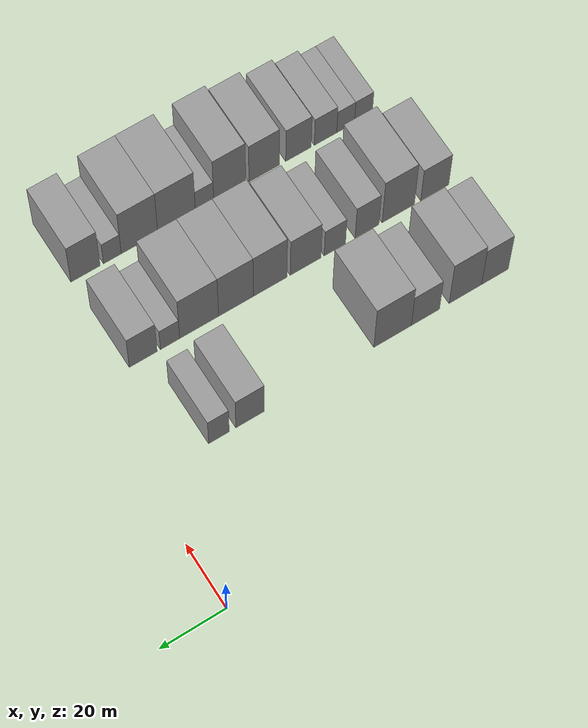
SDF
<sdf version="1.6">
 <world name="default">
  <model name="building_27">
   <static>1</static>
   <pose>50.0000 -107.6770 0 0.000000 0.000000 0.000000</pose>
   <link name="link">
    <pose>0 0 10.50 0 0 0</pose>
    <collision name="collision"><geometry><box><size>20.0000 8.5136 21.0000</size></box></geometry></collision>
    <visual name="visual">
     <cast_shadows>0</cast_shadows>
     <geometry><box><size>20.0000 8.5136 21.0000</size></box></geometry>
     <material>
      <script>
       <uri>model://grey_wall/materials/scripts</uri>
       <uri>model://grey_wall/materials/textures</uri>
       <name>vrc/grey_wall</name>
      </script>
     </material>
    </visual>
   </link>
  </model>
  <model name="building_28">
   <static>1</static>
   <pose>50.0000 -98.3052 0 0.000000 0.000000 0.000000</pose>
   <link name="link">
    <pose>0 0 12.00 0 0 0</pose>
    <collision name="collision"><geometry><box><size>20.0000 10.2300 24.0000</size></box></geometry></collision>
    <visual name="visual">
     <cast_shadows>0</cast_shadows>
     <geometry><box><size>20.0000 10.2300 24.0000</size></box></geometry>
     <material>
      <script>
       <uri>model://grey_wall/materials/scripts</uri>
       <uri>model://grey_wall/materials/textures</uri>
       <name>vrc/grey_wall</name>
      </script>
     </material>
    </visual>
   </link>
  </model>
  <model name="building_29">
   <static>1</static>
   <pose>50.0000 -85.7666 0 0.000000 0.000000 0.000000</pose>
   <link name="link">
    <pose>0 0 9.00 0 0 0</pose>
    <collision name="collision"><geometry><box><size>20.0000 8.8471 18.0000</size></box></geometry></collision>
    <visual name="visual">
     <cast_shadows>0</cast_shadows>
     <geometry><box><size>20.0000 8.8471 18.0000</size></box></geometry>
     <material>
      <script>
       <uri>model://grey_wall/materials/scripts</uri>
       <uri>model://grey_wall/materials/textures</uri>
       <name>vrc/grey_wall</name>
      </script>
     </material>
    </visual>
   </link>
  </model>
  <model name="building_30">
   <static>1</static>
   <pose>50.0000 -75.5026 0 0.000000 0.000000 0.000000</pose>
   <link name="link">
    <pose>0 0 12.00 0 0 0</pose>
    <collision name="collision"><geometry><box><size>20.0000 11.6808 24.0000</size></box></geometry></collision>
    <visual name="visual">
     <cast_shadows>0</cast_shadows>
     <geometry><box><size>20.0000 11.6808 24.0000</size></box></geometry>
     <material>
      <script>
       <uri>model://grey_wall/materials/scripts</uri>
       <uri>model://grey_wall/materials/textures</uri>
       <name>vrc/grey_wall</name>
      </script>
     </material>
    </visual>
   </link>
  </model>
  <model name="building_31">
   <static>1</static>
   <pose>50.0000 -31.6511 0 0.000000 0.000000 0.000000</pose>
   <link name="link">
    <pose>0 0 9.00 0 0 0</pose>
    <collision name="collision"><geometry><box><size>20.0000 8.6741 18.0000</size></box></geometry></collision>
    <visual name="visual">
     <cast_shadows>0</cast_shadows>
     <geometry><box><size>20.0000 8.6741 18.0000</size></box></geometry>
     <material>
      <script>
       <uri>model://grey_wall/materials/scripts</uri>
       <uri>model://grey_wall/materials/textures</uri>
       <name>vrc/grey_wall</name>
      </script>
     </material>
    </visual>
   </link>
  </model>
  <model name="building_32">
   <static>1</static>
   <pose>50.0000 -22.1892 0 0.000000 0.000000 0.000000</pose>
   <link name="link">
    <pose>0 0 7.50 0 0 0</pose>
    <collision name="collision"><geometry><box><size>20.0000 6.2497 15.0000</size></box></geometry></collision>
    <visual name="visual">
     <cast_shadows>0</cast_shadows>
     <geometry><box><size>20.0000 6.2497 15.0000</size></box></geometry>
     <material>
      <script>
       <uri>model://grey_wall/materials/scripts</uri>
       <uri>model://grey_wall/materials/textures</uri>
       <name>vrc/grey_wall</name>
      </script>
     </material>
    </visual>
   </link>
  </model>
  <model name="building_93">
   <static>1</static>
   <pose>79.0000 -107.7630 0 0.000000 0.000000 0.000000</pose>
   <link name="link">
    <pose>0 0 9.00 0 0 0</pose>
    <collision name="collision"><geometry><box><size>20.0000 8.9715 18.0000</size></box></geometry></collision>
    <visual name="visual">
     <cast_shadows>0</cast_shadows>
     <geometry><box><size>20.0000 8.9715 18.0000</size></box></geometry>
     <material>
      <script>
       <uri>model://grey_wall/materials/scripts</uri>
       <uri>model://grey_wall/materials/textures</uri>
       <name>vrc/grey_wall</name>
      </script>
     </material>
    </visual>
   </link>
  </model>
  <model name="building_94">
   <static>1</static>
   <pose>79.0000 -96.1327 0 0.000000 0.000000 0.000000</pose>
   <link name="link">
    <pose>0 0 12.00 0 0 0</pose>
    <collision name="collision"><geometry><box><size>20.0000 10.2889 24.0000</size></box></geometry></collision>
    <visual name="visual">
     <cast_shadows>0</cast_shadows>
     <geometry><box><size>20.0000 10.2889 24.0000</size></box></geometry>
     <material>
      <script>
       <uri>model://grey_wall/materials/scripts</uri>
       <uri>model://grey_wall/materials/textures</uri>
       <name>vrc/grey_wall</name>
      </script>
     </material>
    </visual>
   </link>
  </model>
  <model name="building_95">
   <static>1</static>
   <pose>79.0000 -86.2134 0 0.000000 0.000000 0.000000</pose>
   <link name="link">
    <pose>0 0 9.00 0 0 0</pose>
    <collision name="collision"><geometry><box><size>20.0000 7.5497 18.0000</size></box></geometry></collision>
    <visual name="visual">
     <cast_shadows>0</cast_shadows>
     <geometry><box><size>20.0000 7.5497 18.0000</size></box></geometry>
     <material>
      <script>
       <uri>model://grey_wall/materials/scripts</uri>
       <uri>model://grey_wall/materials/textures</uri>
       <name>vrc/grey_wall</name>
      </script>
     </material>
    </visual>
   </link>
  </model>
  <model name="building_96">
   <static>1</static>
   <pose>79.0000 -76.0758 0 0.000000 0.000000 0.000000</pose>
   <link name="link">
    <pose>0 0 7.50 0 0 0</pose>
    <collision name="collision"><geometry><box><size>20.0000 6.7255 15.0000</size></box></geometry></collision>
    <visual name="visual">
     <cast_shadows>0</cast_shadows>
     <geometry><box><size>20.0000 6.7255 15.0000</size></box></geometry>
     <material>
      <script>
       <uri>model://grey_wall/materials/scripts</uri>
       <uri>model://grey_wall/materials/textures</uri>
       <name>vrc/grey_wall</name>
      </script>
     </material>
    </visual>
   </link>
  </model>
  <model name="building_97">
   <static>1</static>
   <pose>79.0000 -66.9052 0 0.000000 0.000000 0.000000</pose>
   <link name="link">
    <pose>0 0 10.50 0 0 0</pose>
    <collision name="collision"><geometry><box><size>20.0000 9.6157 21.0000</size></box></geometry></collision>
    <visual name="visual">
     <cast_shadows>0</cast_shadows>
     <geometry><box><size>20.0000 9.6157 21.0000</size></box></geometry>
     <material>
      <script>
       <uri>model://grey_wall/materials/scripts</uri>
       <uri>model://grey_wall/materials/textures</uri>
       <name>vrc/grey_wall</name>
      </script>
     </material>
    </visual>
   </link>
  </model>
  <model name="building_98">
   <static>1</static>
   <pose>79.0000 -55.8953 0 0.000000 0.000000 0.000000</pose>
   <link name="link">
    <pose>0 0 12.00 0 0 0</pose>
    <collision name="collision"><geometry><box><size>20.0000 10.4041 24.0000</size></box></geometry></collision>
    <visual name="visual">
     <cast_shadows>0</cast_shadows>
     <geometry><box><size>20.0000 10.4041 24.0000</size></box></geometry>
     <material>
      <script>
       <uri>model://grey_wall/materials/scripts</uri>
       <uri>model://grey_wall/materials/textures</uri>
       <name>vrc/grey_wall</name>
      </script>
     </material>
    </visual>
   </link>
  </model>
  <model name="building_99">
   <static>1</static>
   <pose>79.0000 -45.2925 0 0.000000 0.000000 0.000000</pose>
   <link name="link">
    <pose>0 0 12.00 0 0 0</pose>
    <collision name="collision"><geometry><box><size>20.0000 10.8014 24.0000</size></box></geometry></collision>
    <visual name="visual">
     <cast_shadows>0</cast_shadows>
     <geometry><box><size>20.0000 10.8014 24.0000</size></box></geometry>
     <material>
      <script>
       <uri>model://grey_wall/materials/scripts</uri>
       <uri>model://grey_wall/materials/textures</uri>
       <name>vrc/grey_wall</name>
      </script>
     </material>
    </visual>
   </link>
  </model>
  <model name="building_100">
   <static>1</static>
   <pose>79.0000 -33.9349 0 0.000000 0.000000 0.000000</pose>
   <link name="link">
    <pose>0 0 12.00 0 0 0</pose>
    <collision name="collision"><geometry><box><size>20.0000 11.9140 24.0000</size></box></geometry></collision>
    <visual name="visual">
     <cast_shadows>0</cast_shadows>
     <geometry><box><size>20.0000 11.9140 24.0000</size></box></geometry>
     <material>
      <script>
       <uri>model://grey_wall/materials/scripts</uri>
       <uri>model://grey_wall/materials/textures</uri>
       <name>vrc/grey_wall</name>
      </script>
     </material>
    </visual>
   </link>
  </model>
  <model name="building_101">
   <static>1</static>
   <pose>79.0000 -25.0374 0 0.000000 0.000000 0.000000</pose>
   <link name="link">
    <pose>0 0 6.00 0 0 0</pose>
    <collision name="collision"><geometry><box><size>20.0000 5.8810 12.0000</size></box></geometry></collision>
    <visual name="visual">
     <cast_shadows>0</cast_shadows>
     <geometry><box><size>20.0000 5.8810 12.0000</size></box></geometry>
     <material>
      <script>
       <uri>model://grey_wall/materials/scripts</uri>
       <uri>model://grey_wall/materials/textures</uri>
       <name>vrc/grey_wall</name>
      </script>
     </material>
    </visual>
   </link>
  </model>
  <model name="building_102">
   <static>1</static>
   <pose>79.0000 -16.8628 0 0.000000 0.000000 0.000000</pose>
   <link name="link">
    <pose>0 0 9.00 0 0 0</pose>
    <collision name="collision"><geometry><box><size>20.0000 8.4681 18.0000</size></box></geometry></collision>
    <visual name="visual">
     <cast_shadows>0</cast_shadows>
     <geometry><box><size>20.0000 8.4681 18.0000</size></box></geometry>
     <material>
      <script>
       <uri>model://grey_wall/materials/scripts</uri>
       <uri>model://grey_wall/materials/textures</uri>
       <name>vrc/grey_wall</name>
      </script>
     </material>
    </visual>
   </link>
  </model>
  <model name="building_161">
   <static>1</static>
   <pose>108.0000 -103.7779 0 0.000000 0.000000 0.000000</pose>
   <link name="link">
    <pose>0 0 6.00 0 0 0</pose>
    <collision name="collision"><geometry><box><size>20.0000 5.7256 12.0000</size></box></geometry></collision>
    <visual name="visual">
     <cast_shadows>0</cast_shadows>
     <geometry><box><size>20.0000 5.7256 12.0000</size></box></geometry>
     <material>
      <script>
       <uri>model://grey_wall/materials/scripts</uri>
       <uri>model://grey_wall/materials/textures</uri>
       <name>vrc/grey_wall</name>
      </script>
     </material>
    </visual>
   </link>
  </model>
  <model name="building_162">
   <static>1</static>
   <pose>108.0000 -98.0550 0 0.000000 0.000000 0.000000</pose>
   <link name="link">
    <pose>0 0 6.00 0 0 0</pose>
    <collision name="collision"><geometry><box><size>20.0000 5.7201 12.0000</size></box></geometry></collision>
    <visual name="visual">
     <cast_shadows>0</cast_shadows>
     <geometry><box><size>20.0000 5.7201 12.0000</size></box></geometry>
     <material>
      <script>
       <uri>model://grey_wall/materials/scripts</uri>
       <uri>model://grey_wall/materials/textures</uri>
       <name>vrc/grey_wall</name>
      </script>
     </material>
    </visual>
   </link>
  </model>
  <model name="building_163">
   <static>1</static>
   <pose>108.0000 -91.6006 0 0.000000 0.000000 0.000000</pose>
   <link name="link">
    <pose>0 0 7.50 0 0 0</pose>
    <collision name="collision"><geometry><box><size>20.0000 7.1886 15.0000</size></box></geometry></collision>
    <visual name="visual">
     <cast_shadows>0</cast_shadows>
     <geometry><box><size>20.0000 7.1886 15.0000</size></box></geometry>
     <material>
      <script>
       <uri>model://grey_wall/materials/scripts</uri>
       <uri>model://grey_wall/materials/textures</uri>
       <name>vrc/grey_wall</name>
      </script>
     </material>
    </visual>
   </link>
  </model>
  <model name="building_164">
   <static>1</static>
   <pose>108.0000 -82.9551 0 0.000000 0.000000 0.000000</pose>
   <link name="link">
    <pose>0 0 9.00 0 0 0</pose>
    <collision name="collision"><geometry><box><size>20.0000 8.1024 18.0000</size></box></geometry></collision>
    <visual name="visual">
     <cast_shadows>0</cast_shadows>
     <geometry><box><size>20.0000 8.1024 18.0000</size></box></geometry>
     <material>
      <script>
       <uri>model://grey_wall/materials/scripts</uri>
       <uri>model://grey_wall/materials/textures</uri>
       <name>vrc/grey_wall</name>
      </script>
     </material>
    </visual>
   </link>
  </model>
  <model name="building_165">
   <static>1</static>
   <pose>108.0000 -72.0900 0 0.000000 0.000000 0.000000</pose>
   <link name="link">
    <pose>0 0 10.50 0 0 0</pose>
    <collision name="collision"><geometry><box><size>20.0000 9.6277 21.0000</size></box></geometry></collision>
    <visual name="visual">
     <cast_shadows>0</cast_shadows>
     <geometry><box><size>20.0000 9.6277 21.0000</size></box></geometry>
     <material>
      <script>
       <uri>model://grey_wall/materials/scripts</uri>
       <uri>model://grey_wall/materials/textures</uri>
       <name>vrc/grey_wall</name>
      </script>
     </material>
    </visual>
   </link>
  </model>
  <model name="building_166">
   <static>1</static>
   <pose>108.0000 -61.2458 0 0.000000 0.000000 0.000000</pose>
   <link name="link">
    <pose>0 0 12.00 0 0 0</pose>
    <collision name="collision"><geometry><box><size>20.0000 10.0608 24.0000</size></box></geometry></collision>
    <visual name="visual">
     <cast_shadows>0</cast_shadows>
     <geometry><box><size>20.0000 10.0608 24.0000</size></box></geometry>
     <material>
      <script>
       <uri>model://grey_wall/materials/scripts</uri>
       <uri>model://grey_wall/materials/textures</uri>
       <name>vrc/grey_wall</name>
      </script>
     </material>
    </visual>
   </link>
  </model>
  <model name="building_167">
   <static>1</static>
   <pose>108.0000 -53.3576 0 0.000000 0.000000 0.000000</pose>
   <link name="link">
    <pose>0 0 6.00 0 0 0</pose>
    <collision name="collision"><geometry><box><size>20.0000 5.7157 12.0000</size></box></geometry></collision>
    <visual name="visual">
     <cast_shadows>0</cast_shadows>
     <geometry><box><size>20.0000 5.7157 12.0000</size></box></geometry>
     <material>
      <script>
       <uri>model://grey_wall/materials/scripts</uri>
       <uri>model://grey_wall/materials/textures</uri>
       <name>vrc/grey_wall</name>
      </script>
     </material>
    </visual>
   </link>
  </model>
  <model name="building_168">
   <static>1</static>
   <pose>108.0000 -44.6346 0 0.000000 0.000000 0.000000</pose>
   <link name="link">
    <pose>0 0 12.00 0 0 0</pose>
    <collision name="collision"><geometry><box><size>20.0000 11.7302 24.0000</size></box></geometry></collision>
    <visual name="visual">
     <cast_shadows>0</cast_shadows>
     <geometry><box><size>20.0000 11.7302 24.0000</size></box></geometry>
     <material>
      <script>
       <uri>model://grey_wall/materials/scripts</uri>
       <uri>model://grey_wall/materials/textures</uri>
       <name>vrc/grey_wall</name>
      </script>
     </material>
    </visual>
   </link>
  </model>
  <model name="building_169">
   <static>1</static>
   <pose>108.0000 -33.1351 0 0.000000 0.000000 0.000000</pose>
   <link name="link">
    <pose>0 0 12.00 0 0 0</pose>
    <collision name="collision"><geometry><box><size>20.0000 11.2688 24.0000</size></box></geometry></collision>
    <visual name="visual">
     <cast_shadows>0</cast_shadows>
     <geometry><box><size>20.0000 11.2688 24.0000</size></box></geometry>
     <material>
      <script>
       <uri>model://grey_wall/materials/scripts</uri>
       <uri>model://grey_wall/materials/textures</uri>
       <name>vrc/grey_wall</name>
      </script>
     </material>
    </visual>
   </link>
  </model>
  <model name="building_170">
   <static>1</static>
   <pose>108.0000 -24.7556 0 0.000000 0.000000 0.000000</pose>
   <link name="link">
    <pose>0 0 6.00 0 0 0</pose>
    <collision name="collision"><geometry><box><size>20.0000 5.4902 12.0000</size></box></geometry></collision>
    <visual name="visual">
     <cast_shadows>0</cast_shadows>
     <geometry><box><size>20.0000 5.4902 12.0000</size></box></geometry>
     <material>
      <script>
       <uri>model://grey_wall/materials/scripts</uri>
       <uri>model://grey_wall/materials/textures</uri>
       <name>vrc/grey_wall</name>
      </script>
     </material>
    </visual>
   </link>
  </model>
  <model name="building_171">
   <static>1</static>
   <pose>108.0000 -16.5234 0 0.000000 0.000000 0.000000</pose>
   <link name="link">
    <pose>0 0 10.50 0 0 0</pose>
    <collision name="collision"><geometry><box><size>20.0000 8.9742 21.0000</size></box></geometry></collision>
    <visual name="visual">
     <cast_shadows>0</cast_shadows>
     <geometry><box><size>20.0000 8.9742 21.0000</size></box></geometry>
     <material>
      <script>
       <uri>model://grey_wall/materials/scripts</uri>
       <uri>model://grey_wall/materials/textures</uri>
       <name>vrc/grey_wall</name>
      </script>
     </material>
    </visual>
   </link>
  </model>
 </world>
</sdf>
